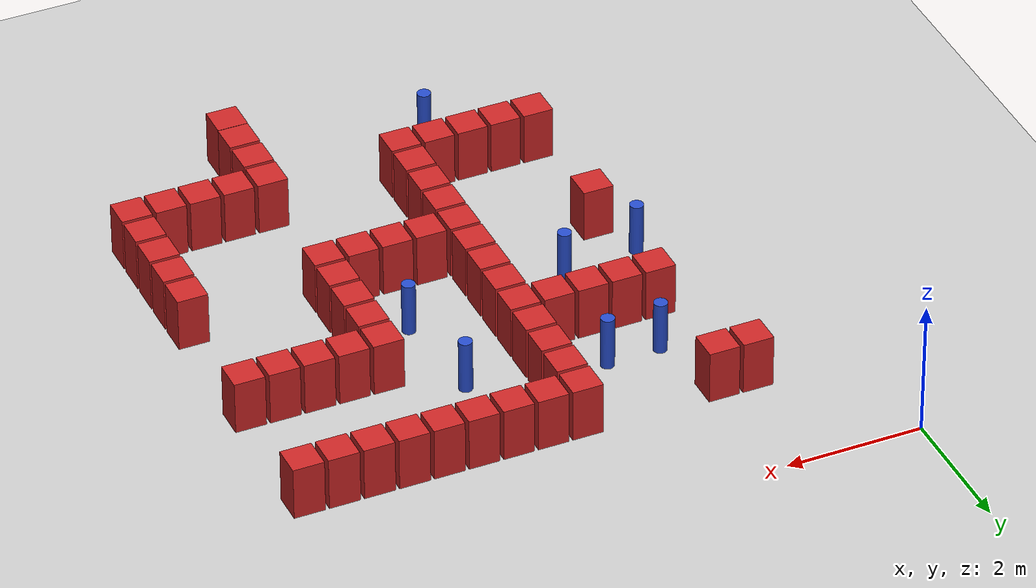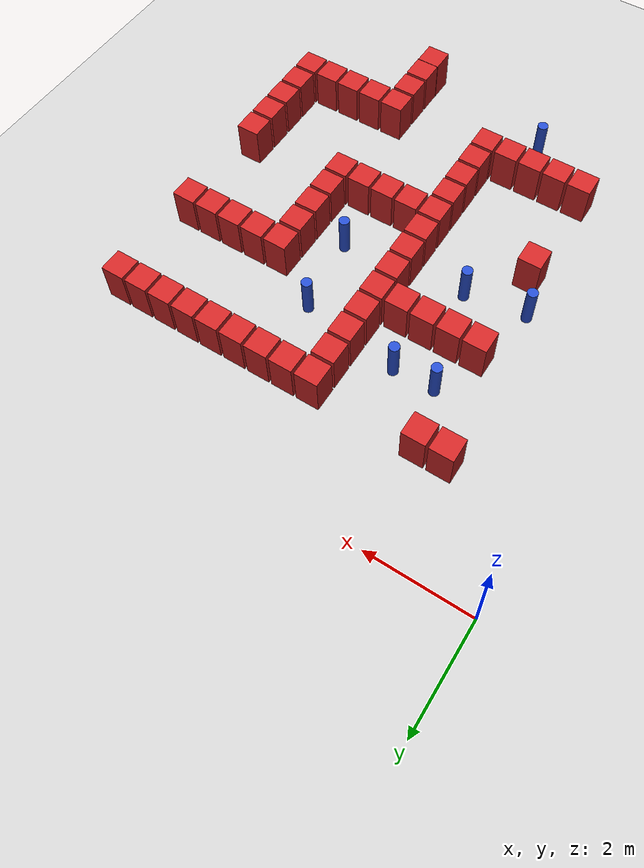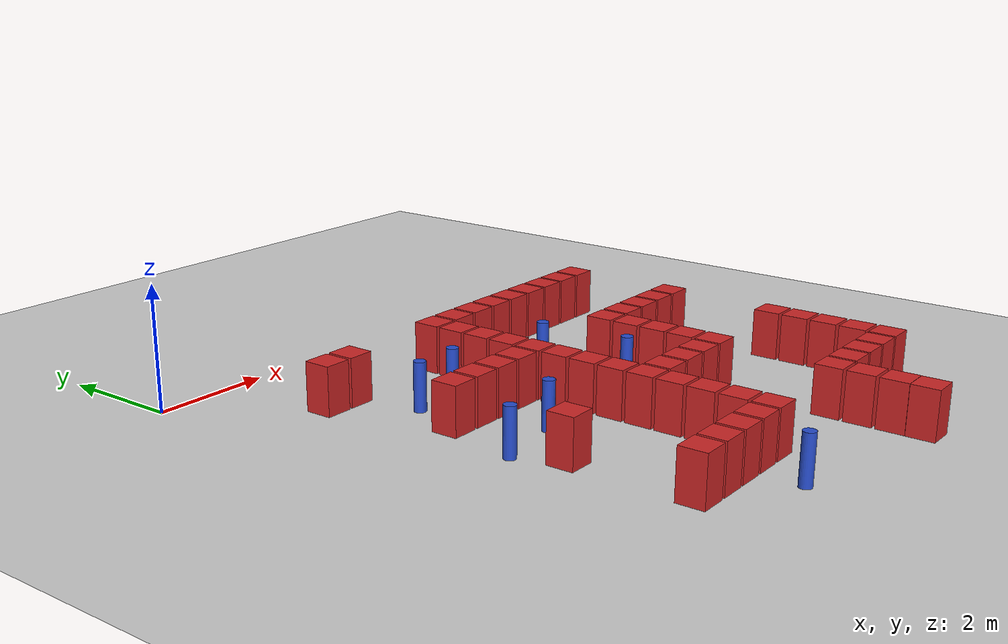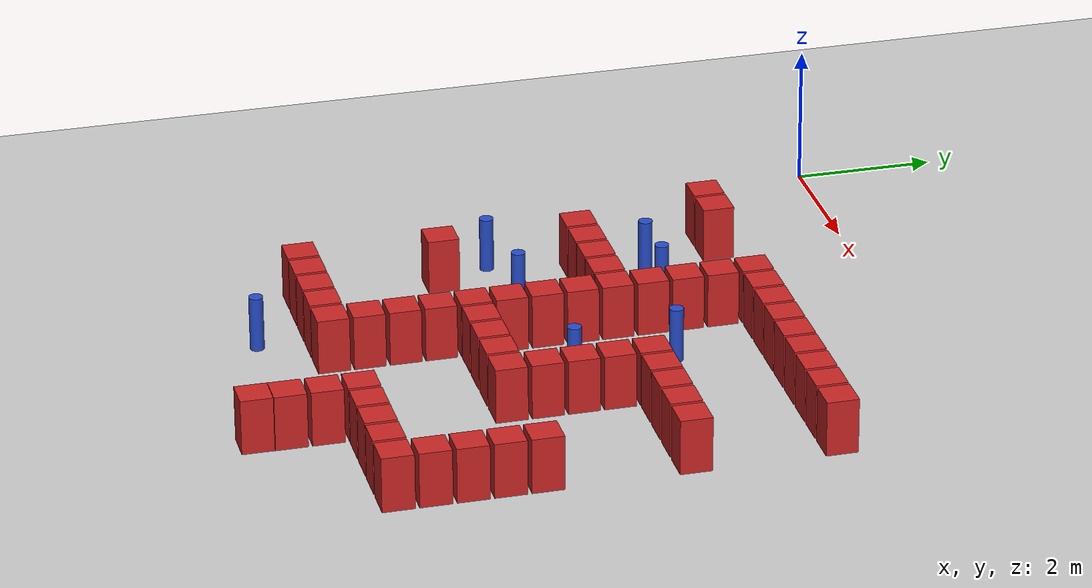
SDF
<sdf version="1.6">
 <world name="default">
  <model name="ground_plane">
   <static>1</static>
   <link name="link">
    <collision name="collision">
     <geometry><plane><normal>0 0 1</normal><size>100 100</size></plane></geometry>
     <surface><friction><ode><mu>100</mu><mu2>50</mu2></ode></friction></surface>
    </collision>
    <visual name="visual">
     <cast_shadows>0</cast_shadows>
     <geometry><plane><normal>0 0 1</normal><size>100 100</size></plane></geometry>
     <material>
      <script><uri>file://media/materials/scripts/gazebo.material</uri><name>Gazebo/Grey</name></script>
     </material>
    </visual>
   </link>
  </model>
  <model name="box_obstacle182">
   <static>0</static>
   <link name="box_obstacle">
    <pose>0 0 0.1 0 -0 0</pose>
    <inertial>
     <mass>100</mass>
     <inertia>
      <ixx>0.166667</ixx>
      <ixy>0</ixy>
      <ixz>0</ixz>
      <iyy>0.166667</iyy>
      <iyz>0</iyz>
      <izz>0.166667</izz>
     </inertia>
    </inertial>
    <collision name="collision"><geometry><box><size>0.45 0.45 0.8</size></box></geometry></collision>
    <visual name="visual">
     <geometry><box><size>0.45 0.45 0.8</size></box></geometry>
     <material>
      <script><name>Gazebo/Red</name><uri>file://media/materials/scripts/gazebo.material</uri></script>
     </material>
    </visual>
   </link>
   <pose>1.61455 -1.92027 0.299997 -3e-06 5e-06 -4e-06</pose>
  </model>
  <model name="box_obstacle186">
   <static>0</static>
   <link name="box_obstacle">
    <pose>0 0 0.1 0 -0 0</pose>
    <inertial>
     <mass>100</mass>
     <inertia>
      <ixx>0.166667</ixx>
      <ixy>0</ixy>
      <ixz>0</ixz>
      <iyy>0.166667</iyy>
      <iyz>0</iyz>
      <izz>0.166667</izz>
     </inertia>
    </inertial>
    <collision name="collision"><geometry><box><size>0.45 0.45 0.8</size></box></geometry></collision>
    <visual name="visual">
     <geometry><box><size>0.45 0.45 0.8</size></box></geometry>
     <material>
      <script><name>Gazebo/Red</name><uri>file://media/materials/scripts/gazebo.material</uri></script>
     </material>
    </visual>
   </link>
   <pose>2.11955 -7.98027 0.299997 -3e-06 5e-06 -4e-06</pose>
  </model>
  <model name="box_obstacle187">
   <static>0</static>
   <link name="box_obstacle">
    <pose>0 0 0.1 0 -0 0</pose>
    <inertial>
     <mass>100</mass>
     <inertia>
      <ixx>0.166667</ixx>
      <ixy>0</ixy>
      <ixz>0</ixz>
      <iyy>0.166667</iyy>
      <iyz>0</iyz>
      <izz>0.166667</izz>
     </inertia>
    </inertial>
    <collision name="collision"><geometry><box><size>0.45 0.45 0.8</size></box></geometry></collision>
    <visual name="visual">
     <geometry><box><size>0.45 0.45 0.8</size></box></geometry>
     <material>
      <script><name>Gazebo/Red</name><uri>file://media/materials/scripts/gazebo.material</uri></script>
     </material>
    </visual>
   </link>
   <pose>2.11955 -5.96027 0.299997 -3e-06 5e-06 -4e-06</pose>
  </model>
  <model name="box_obstacle188">
   <static>0</static>
   <link name="box_obstacle">
    <pose>0 0 0.1 0 -0 0</pose>
    <inertial>
     <mass>100</mass>
     <inertia>
      <ixx>0.166667</ixx>
      <ixy>0</ixy>
      <ixz>0</ixz>
      <iyy>0.166667</iyy>
      <iyz>0</iyz>
      <izz>0.166667</izz>
     </inertia>
    </inertial>
    <collision name="collision"><geometry><box><size>0.45 0.45 0.8</size></box></geometry></collision>
    <visual name="visual">
     <geometry><box><size>0.45 0.45 0.8</size></box></geometry>
     <material>
      <script><name>Gazebo/Red</name><uri>file://media/materials/scripts/gazebo.material</uri></script>
     </material>
    </visual>
   </link>
   <pose>2.11955 -3.94027 0.299997 -3e-06 5e-06 -4e-06</pose>
  </model>
  <model name="box_obstacle189">
   <static>0</static>
   <link name="box_obstacle">
    <pose>0 0 0.1 0 -0 0</pose>
    <inertial>
     <mass>100</mass>
     <inertia>
      <ixx>0.166667</ixx>
      <ixy>0</ixy>
      <ixz>0</ixz>
      <iyy>0.166667</iyy>
      <iyz>0</iyz>
      <izz>0.166667</izz>
     </inertia>
    </inertial>
    <collision name="collision"><geometry><box><size>0.45 0.45 0.8</size></box></geometry></collision>
    <visual name="visual">
     <geometry><box><size>0.45 0.45 0.8</size></box></geometry>
     <material>
      <script><name>Gazebo/Red</name><uri>file://media/materials/scripts/gazebo.material</uri></script>
     </material>
    </visual>
   </link>
   <pose>2.11955 -1.92027 0.299997 -3e-06 5e-06 -4e-06</pose>
  </model>
  <model name="box_obstacle207">
   <static>0</static>
   <link name="box_obstacle">
    <pose>0 0 0.1 0 -0 0</pose>
    <inertial>
     <mass>100</mass>
     <inertia>
      <ixx>0.166667</ixx>
      <ixy>0</ixy>
      <ixz>0</ixz>
      <iyy>0.166667</iyy>
      <iyz>0</iyz>
      <izz>0.166667</izz>
     </inertia>
    </inertial>
    <collision name="collision"><geometry><box><size>0.45 0.45 0.8</size></box></geometry></collision>
    <visual name="visual">
     <geometry><box><size>0.45 0.45 0.8</size></box></geometry>
     <material>
      <script><name>Gazebo/Red</name><uri>file://media/materials/scripts/gazebo.material</uri></script>
     </material>
    </visual>
   </link>
   <pose>2.62455 -7.98027 0.299997 -3e-06 5e-06 -4e-06</pose>
  </model>
  <model name="box_obstacle208">
   <static>0</static>
   <link name="box_obstacle">
    <pose>0 0 0.1 0 -0 0</pose>
    <inertial>
     <mass>100</mass>
     <inertia>
      <ixx>0.166667</ixx>
      <ixy>0</ixy>
      <ixz>0</ixz>
      <iyy>0.166667</iyy>
      <iyz>0</iyz>
      <izz>0.166667</izz>
     </inertia>
    </inertial>
    <collision name="collision"><geometry><box><size>0.45 0.45 0.8</size></box></geometry></collision>
    <visual name="visual">
     <geometry><box><size>0.45 0.45 0.8</size></box></geometry>
     <material>
      <script><name>Gazebo/Red</name><uri>file://media/materials/scripts/gazebo.material</uri></script>
     </material>
    </visual>
   </link>
   <pose>2.62455 -3.94027 0.299997 -3e-06 5e-06 -4e-06</pose>
  </model>
  <model name="box_obstacle210">
   <static>0</static>
   <link name="box_obstacle">
    <pose>0 0 0.1 0 -0 0</pose>
    <inertial>
     <mass>100</mass>
     <inertia>
      <ixx>0.166667</ixx>
      <ixy>0</ixy>
      <ixz>0</ixz>
      <iyy>0.166667</iyy>
      <iyz>0</iyz>
      <izz>0.166667</izz>
     </inertia>
    </inertial>
    <collision name="collision"><geometry><box><size>0.45 0.45 0.8</size></box></geometry></collision>
    <visual name="visual">
     <geometry><box><size>0.45 0.45 0.8</size></box></geometry>
     <material>
      <script><name>Gazebo/Red</name><uri>file://media/materials/scripts/gazebo.material</uri></script>
     </material>
    </visual>
   </link>
   <pose>3.12955 -7.98027 0.299997 -3e-06 5e-06 -4e-06</pose>
  </model>
  <model name="box_obstacle211">
   <static>0</static>
   <link name="box_obstacle">
    <pose>0 0 0.1 0 -0 0</pose>
    <inertial>
     <mass>100</mass>
     <inertia>
      <ixx>0.166667</ixx>
      <ixy>0</ixy>
      <ixz>0</ixz>
      <iyy>0.166667</iyy>
      <iyz>0</iyz>
      <izz>0.166667</izz>
     </inertia>
    </inertial>
    <collision name="collision"><geometry><box><size>0.45 0.45 0.8</size></box></geometry></collision>
    <visual name="visual">
     <geometry><box><size>0.45 0.45 0.8</size></box></geometry>
     <material>
      <script><name>Gazebo/Red</name><uri>file://media/materials/scripts/gazebo.material</uri></script>
     </material>
    </visual>
   </link>
   <pose>3.12955 -3.94027 0.299997 -3e-06 5e-06 -4e-06</pose>
  </model>
  <model name="box_obstacle213">
   <static>0</static>
   <link name="box_obstacle">
    <pose>0 0 0.1 0 -0 0</pose>
    <inertial>
     <mass>100</mass>
     <inertia>
      <ixx>0.166667</ixx>
      <ixy>0</ixy>
      <ixz>0</ixz>
      <iyy>0.166667</iyy>
      <iyz>0</iyz>
      <izz>0.166667</izz>
     </inertia>
    </inertial>
    <collision name="collision"><geometry><box><size>0.45 0.45 0.8</size></box></geometry></collision>
    <visual name="visual">
     <geometry><box><size>0.45 0.45 0.8</size></box></geometry>
     <material>
      <script><name>Gazebo/Red</name><uri>file://media/materials/scripts/gazebo.material</uri></script>
     </material>
    </visual>
   </link>
   <pose>3.63455 -7.98027 0.299997 -3e-06 5e-06 -4e-06</pose>
  </model>
  <model name="box_obstacle214">
   <static>0</static>
   <link name="box_obstacle">
    <pose>0 0 0.1 0 -0 0</pose>
    <inertial>
     <mass>100</mass>
     <inertia>
      <ixx>0.166667</ixx>
      <ixy>0</ixy>
      <ixz>0</ixz>
      <iyy>0.166667</iyy>
      <iyz>0</iyz>
      <izz>0.166667</izz>
     </inertia>
    </inertial>
    <collision name="collision"><geometry><box><size>0.45 0.45 0.8</size></box></geometry></collision>
    <visual name="visual">
     <geometry><box><size>0.45 0.45 0.8</size></box></geometry>
     <material>
      <script><name>Gazebo/Red</name><uri>file://media/materials/scripts/gazebo.material</uri></script>
     </material>
    </visual>
   </link>
   <pose>3.63455 -3.94027 0.299997 -3e-06 5e-06 -4e-06</pose>
  </model>
  <model name="box_obstacle216">
   <static>0</static>
   <link name="box_obstacle">
    <pose>0 0 0.1 0 -0 0</pose>
    <inertial>
     <mass>100</mass>
     <inertia>
      <ixx>0.166667</ixx>
      <ixy>0</ixy>
      <ixz>0</ixz>
      <iyy>0.166667</iyy>
      <iyz>0</iyz>
      <izz>0.166667</izz>
     </inertia>
    </inertial>
    <collision name="collision"><geometry><box><size>0.45 0.45 0.8</size></box></geometry></collision>
    <visual name="visual">
     <geometry><box><size>0.45 0.45 0.8</size></box></geometry>
     <material>
      <script><name>Gazebo/Red</name><uri>file://media/materials/scripts/gazebo.material</uri></script>
     </material>
    </visual>
   </link>
   <pose>4.13955 -7.98027 0.299997 -3e-06 5e-06 -4e-06</pose>
  </model>
  <model name="box_obstacle217">
   <static>0</static>
   <link name="box_obstacle">
    <pose>0 0 0.1 0 -0 0</pose>
    <inertial>
     <mass>100</mass>
     <inertia>
      <ixx>0.166667</ixx>
      <ixy>0</ixy>
      <ixz>0</ixz>
      <iyy>0.166667</iyy>
      <iyz>0</iyz>
      <izz>0.166667</izz>
     </inertia>
    </inertial>
    <collision name="collision"><geometry><box><size>0.45 0.45 0.8</size></box></geometry></collision>
    <visual name="visual">
     <geometry><box><size>0.45 0.45 0.8</size></box></geometry>
     <material>
      <script><name>Gazebo/Red</name><uri>file://media/materials/scripts/gazebo.material</uri></script>
     </material>
    </visual>
   </link>
   <pose>4.13955 -7.47527 0.299997 -3e-06 5e-06 -4e-06</pose>
  </model>
  <model name="box_obstacle218">
   <static>0</static>
   <link name="box_obstacle">
    <pose>0 0 0.1 0 -0 0</pose>
    <inertial>
     <mass>100</mass>
     <inertia>
      <ixx>0.166667</ixx>
      <ixy>0</ixy>
      <ixz>0</ixz>
      <iyy>0.166667</iyy>
      <iyz>0</iyz>
      <izz>0.166667</izz>
     </inertia>
    </inertial>
    <collision name="collision"><geometry><box><size>0.45 0.45 0.8</size></box></geometry></collision>
    <visual name="visual">
     <geometry><box><size>0.45 0.45 0.8</size></box></geometry>
     <material>
      <script><name>Gazebo/Red</name><uri>file://media/materials/scripts/gazebo.material</uri></script>
     </material>
    </visual>
   </link>
   <pose>4.13955 -6.97027 0.299997 -3e-06 5e-06 -4e-06</pose>
  </model>
  <model name="box_obstacle219">
   <static>0</static>
   <link name="box_obstacle">
    <pose>0 0 0.1 0 -0 0</pose>
    <inertial>
     <mass>100</mass>
     <inertia>
      <ixx>0.166667</ixx>
      <ixy>0</ixy>
      <ixz>0</ixz>
      <iyy>0.166667</iyy>
      <iyz>0</iyz>
      <izz>0.166667</izz>
     </inertia>
    </inertial>
    <collision name="collision"><geometry><box><size>0.45 0.45 0.8</size></box></geometry></collision>
    <visual name="visual">
     <geometry><box><size>0.45 0.45 0.8</size></box></geometry>
     <material>
      <script><name>Gazebo/Red</name><uri>file://media/materials/scripts/gazebo.material</uri></script>
     </material>
    </visual>
   </link>
   <pose>4.13955 -6.46527 0.299997 -3e-06 5e-06 -4e-06</pose>
  </model>
  <model name="box_obstacle220">
   <static>0</static>
   <link name="box_obstacle">
    <pose>0 0 0.1 0 -0 0</pose>
    <inertial>
     <mass>100</mass>
     <inertia>
      <ixx>0.166667</ixx>
      <ixy>0</ixy>
      <ixz>0</ixz>
      <iyy>0.166667</iyy>
      <iyz>0</iyz>
      <izz>0.166667</izz>
     </inertia>
    </inertial>
    <collision name="collision"><geometry><box><size>0.45 0.45 0.8</size></box></geometry></collision>
    <visual name="visual">
     <geometry><box><size>0.45 0.45 0.8</size></box></geometry>
     <material>
      <script><name>Gazebo/Red</name><uri>file://media/materials/scripts/gazebo.material</uri></script>
     </material>
    </visual>
   </link>
   <pose>4.13955 -5.96027 0.299997 -3e-06 5e-06 -4e-06</pose>
  </model>
  <model name="box_obstacle221">
   <static>0</static>
   <link name="box_obstacle">
    <pose>0 0 0.1 0 -0 0</pose>
    <inertial>
     <mass>100</mass>
     <inertia>
      <ixx>0.166667</ixx>
      <ixy>0</ixy>
      <ixz>0</ixz>
      <iyy>0.166667</iyy>
      <iyz>0</iyz>
      <izz>0.166667</izz>
     </inertia>
    </inertial>
    <collision name="collision"><geometry><box><size>0.45 0.45 0.8</size></box></geometry></collision>
    <visual name="visual">
     <geometry><box><size>0.45 0.45 0.8</size></box></geometry>
     <material>
      <script><name>Gazebo/Red</name><uri>file://media/materials/scripts/gazebo.material</uri></script>
     </material>
    </visual>
   </link>
   <pose>4.13955 -5.45527 0.299997 -3e-06 5e-06 -4e-06</pose>
  </model>
  <model name="box_obstacle222">
   <static>0</static>
   <link name="box_obstacle">
    <pose>0 0 0.1 0 -0 0</pose>
    <inertial>
     <mass>100</mass>
     <inertia>
      <ixx>0.166667</ixx>
      <ixy>0</ixy>
      <ixz>0</ixz>
      <iyy>0.166667</iyy>
      <iyz>0</iyz>
      <izz>0.166667</izz>
     </inertia>
    </inertial>
    <collision name="collision"><geometry><box><size>0.45 0.45 0.8</size></box></geometry></collision>
    <visual name="visual">
     <geometry><box><size>0.45 0.45 0.8</size></box></geometry>
     <material>
      <script><name>Gazebo/Red</name><uri>file://media/materials/scripts/gazebo.material</uri></script>
     </material>
    </visual>
   </link>
   <pose>4.13955 -4.95027 0.299997 -3e-06 5e-06 -4e-06</pose>
  </model>
  <model name="box_obstacle223">
   <static>0</static>
   <link name="box_obstacle">
    <pose>0 0 0.1 0 -0 0</pose>
    <inertial>
     <mass>100</mass>
     <inertia>
      <ixx>0.166667</ixx>
      <ixy>0</ixy>
      <ixz>0</ixz>
      <iyy>0.166667</iyy>
      <iyz>0</iyz>
      <izz>0.166667</izz>
     </inertia>
    </inertial>
    <collision name="collision"><geometry><box><size>0.45 0.45 0.8</size></box></geometry></collision>
    <visual name="visual">
     <geometry><box><size>0.45 0.45 0.8</size></box></geometry>
     <material>
      <script><name>Gazebo/Red</name><uri>file://media/materials/scripts/gazebo.material</uri></script>
     </material>
    </visual>
   </link>
   <pose>4.13955 -4.44527 0.299997 -3e-06 5e-06 -4e-06</pose>
  </model>
  <model name="box_obstacle224">
   <static>0</static>
   <link name="box_obstacle">
    <pose>0 0 0.1 0 -0 0</pose>
    <inertial>
     <mass>100</mass>
     <inertia>
      <ixx>0.166667</ixx>
      <ixy>0</ixy>
      <ixz>0</ixz>
      <iyy>0.166667</iyy>
      <iyz>0</iyz>
      <izz>0.166667</izz>
     </inertia>
    </inertial>
    <collision name="collision"><geometry><box><size>0.45 0.45 0.8</size></box></geometry></collision>
    <visual name="visual">
     <geometry><box><size>0.45 0.45 0.8</size></box></geometry>
     <material>
      <script><name>Gazebo/Red</name><uri>file://media/materials/scripts/gazebo.material</uri></script>
     </material>
    </visual>
   </link>
   <pose>4.13955 -3.94027 0.299997 -3e-06 5e-06 -4e-06</pose>
  </model>
  <model name="box_obstacle225">
   <static>0</static>
   <link name="box_obstacle">
    <pose>0 0 0.1 0 -0 0</pose>
    <inertial>
     <mass>100</mass>
     <inertia>
      <ixx>0.166667</ixx>
      <ixy>0</ixy>
      <ixz>0</ixz>
      <iyy>0.166667</iyy>
      <iyz>0</iyz>
      <izz>0.166667</izz>
     </inertia>
    </inertial>
    <collision name="collision"><geometry><box><size>0.45 0.45 0.8</size></box></geometry></collision>
    <visual name="visual">
     <geometry><box><size>0.45 0.45 0.8</size></box></geometry>
     <material>
      <script><name>Gazebo/Red</name><uri>file://media/materials/scripts/gazebo.material</uri></script>
     </material>
    </visual>
   </link>
   <pose>4.13955 -3.43527 0.299997 -3e-06 5e-06 -4e-06</pose>
  </model>
  <model name="box_obstacle226">
   <static>0</static>
   <link name="box_obstacle">
    <pose>0 0 0.1 0 -0 0</pose>
    <inertial>
     <mass>100</mass>
     <inertia>
      <ixx>0.166667</ixx>
      <ixy>0</ixy>
      <ixz>0</ixz>
      <iyy>0.166667</iyy>
      <iyz>0</iyz>
      <izz>0.166667</izz>
     </inertia>
    </inertial>
    <collision name="collision"><geometry><box><size>0.45 0.45 0.8</size></box></geometry></collision>
    <visual name="visual">
     <geometry><box><size>0.45 0.45 0.8</size></box></geometry>
     <material>
      <script><name>Gazebo/Red</name><uri>file://media/materials/scripts/gazebo.material</uri></script>
     </material>
    </visual>
   </link>
   <pose>4.13955 -2.93027 0.299997 -3e-06 5e-06 -4e-06</pose>
  </model>
  <model name="box_obstacle227">
   <static>0</static>
   <link name="box_obstacle">
    <pose>0 0 0.1 0 -0 0</pose>
    <inertial>
     <mass>100</mass>
     <inertia>
      <ixx>0.166667</ixx>
      <ixy>0</ixy>
      <ixz>0</ixz>
      <iyy>0.166667</iyy>
      <iyz>0</iyz>
      <izz>0.166667</izz>
     </inertia>
    </inertial>
    <collision name="collision"><geometry><box><size>0.45 0.45 0.8</size></box></geometry></collision>
    <visual name="visual">
     <geometry><box><size>0.45 0.45 0.8</size></box></geometry>
     <material>
      <script><name>Gazebo/Red</name><uri>file://media/materials/scripts/gazebo.material</uri></script>
     </material>
    </visual>
   </link>
   <pose>4.13955 -2.42527 0.299997 -3e-06 5e-06 -4e-06</pose>
  </model>
  <model name="box_obstacle228">
   <static>0</static>
   <link name="box_obstacle">
    <pose>0 0 0.1 0 -0 0</pose>
    <inertial>
     <mass>100</mass>
     <inertia>
      <ixx>0.166667</ixx>
      <ixy>0</ixy>
      <ixz>0</ixz>
      <iyy>0.166667</iyy>
      <iyz>0</iyz>
      <izz>0.166667</izz>
     </inertia>
    </inertial>
    <collision name="collision"><geometry><box><size>0.45 0.45 0.8</size></box></geometry></collision>
    <visual name="visual">
     <geometry><box><size>0.45 0.45 0.8</size></box></geometry>
     <material>
      <script><name>Gazebo/Red</name><uri>file://media/materials/scripts/gazebo.material</uri></script>
     </material>
    </visual>
   </link>
   <pose>4.13955 -1.92027 0.299997 -3e-06 5e-06 -4e-06</pose>
  </model>
  <model name="box_obstacle246">
   <static>0</static>
   <link name="box_obstacle">
    <pose>0 0 0.1 0 -0 0</pose>
    <inertial>
     <mass>100</mass>
     <inertia>
      <ixx>0.166667</ixx>
      <ixy>0</ixy>
      <ixz>0</ixz>
      <iyy>0.166667</iyy>
      <iyz>0</iyz>
      <izz>0.166667</izz>
     </inertia>
    </inertial>
    <collision name="collision"><geometry><box><size>0.45 0.45 0.8</size></box></geometry></collision>
    <visual name="visual">
     <geometry><box><size>0.45 0.45 0.8</size></box></geometry>
     <material>
      <script><name>Gazebo/Red</name><uri>file://media/materials/scripts/gazebo.material</uri></script>
     </material>
    </visual>
   </link>
   <pose>4.64455 -5.96027 0.299997 -3e-06 5e-06 -4e-06</pose>
  </model>
  <model name="box_obstacle247">
   <static>0</static>
   <link name="box_obstacle">
    <pose>0 0 0.1 0 -0 0</pose>
    <inertial>
     <mass>100</mass>
     <inertia>
      <ixx>0.166667</ixx>
      <ixy>0</ixy>
      <ixz>0</ixz>
      <iyy>0.166667</iyy>
      <iyz>0</iyz>
      <izz>0.166667</izz>
     </inertia>
    </inertial>
    <collision name="collision"><geometry><box><size>0.45 0.45 0.8</size></box></geometry></collision>
    <visual name="visual">
     <geometry><box><size>0.45 0.45 0.8</size></box></geometry>
     <material>
      <script><name>Gazebo/Red</name><uri>file://media/materials/scripts/gazebo.material</uri></script>
     </material>
    </visual>
   </link>
   <pose>4.64455 -1.92027 0.299997 -3e-06 5e-06 -4e-06</pose>
  </model>
  <model name="box_obstacle250">
   <static>0</static>
   <link name="box_obstacle">
    <pose>0 0 0.1 0 -0 0</pose>
    <inertial>
     <mass>100</mass>
     <inertia>
      <ixx>0.166667</ixx>
      <ixy>0</ixy>
      <ixz>0</ixz>
      <iyy>0.166667</iyy>
      <iyz>0</iyz>
      <izz>0.166667</izz>
     </inertia>
    </inertial>
    <collision name="collision"><geometry><box><size>0.45 0.45 0.8</size></box></geometry></collision>
    <visual name="visual">
     <geometry><box><size>0.45 0.45 0.8</size></box></geometry>
     <material>
      <script><name>Gazebo/Red</name><uri>file://media/materials/scripts/gazebo.material</uri></script>
     </material>
    </visual>
   </link>
   <pose>5.14955 -5.96027 0.299997 -3e-06 5e-06 -4e-06</pose>
  </model>
  <model name="box_obstacle251">
   <static>0</static>
   <link name="box_obstacle">
    <pose>0 0 0.1 0 -0 0</pose>
    <inertial>
     <mass>100</mass>
     <inertia>
      <ixx>0.166667</ixx>
      <ixy>0</ixy>
      <ixz>0</ixz>
      <iyy>0.166667</iyy>
      <iyz>0</iyz>
      <izz>0.166667</izz>
     </inertia>
    </inertial>
    <collision name="collision"><geometry><box><size>0.45 0.45 0.8</size></box></geometry></collision>
    <visual name="visual">
     <geometry><box><size>0.45 0.45 0.8</size></box></geometry>
     <material>
      <script><name>Gazebo/Red</name><uri>file://media/materials/scripts/gazebo.material</uri></script>
     </material>
    </visual>
   </link>
   <pose>5.14955 -1.92027 0.299997 -3e-06 5e-06 -4e-06</pose>
  </model>
  <model name="box_obstacle254">
   <static>0</static>
   <link name="box_obstacle">
    <pose>0 0 0.1 0 -0 0</pose>
    <inertial>
     <mass>100</mass>
     <inertia>
      <ixx>0.166667</ixx>
      <ixy>0</ixy>
      <ixz>0</ixz>
      <iyy>0.166667</iyy>
      <iyz>0</iyz>
      <izz>0.166667</izz>
     </inertia>
    </inertial>
    <collision name="collision"><geometry><box><size>0.45 0.45 0.8</size></box></geometry></collision>
    <visual name="visual">
     <geometry><box><size>0.45 0.45 0.8</size></box></geometry>
     <material>
      <script><name>Gazebo/Red</name><uri>file://media/materials/scripts/gazebo.material</uri></script>
     </material>
    </visual>
   </link>
   <pose>5.65455 -5.96027 0.299997 -3e-06 5e-06 -4e-06</pose>
  </model>
  <model name="box_obstacle255">
   <static>0</static>
   <link name="box_obstacle">
    <pose>0 0 0.1 0 -0 0</pose>
    <inertial>
     <mass>100</mass>
     <inertia>
      <ixx>0.166667</ixx>
      <ixy>0</ixy>
      <ixz>0</ixz>
      <iyy>0.166667</iyy>
      <iyz>0</iyz>
      <izz>0.166667</izz>
     </inertia>
    </inertial>
    <collision name="collision"><geometry><box><size>0.45 0.45 0.8</size></box></geometry></collision>
    <visual name="visual">
     <geometry><box><size>0.45 0.45 0.8</size></box></geometry>
     <material>
      <script><name>Gazebo/Red</name><uri>file://media/materials/scripts/gazebo.material</uri></script>
     </material>
    </visual>
   </link>
   <pose>5.65455 -1.92027 0.299997 -3e-06 5e-06 -4e-06</pose>
  </model>
  <model name="box_obstacle258">
   <static>0</static>
   <link name="box_obstacle">
    <pose>0 0 0.1 0 -0 0</pose>
    <inertial>
     <mass>100</mass>
     <inertia>
      <ixx>0.166667</ixx>
      <ixy>0</ixy>
      <ixz>0</ixz>
      <iyy>0.166667</iyy>
      <iyz>0</iyz>
      <izz>0.166667</izz>
     </inertia>
    </inertial>
    <collision name="collision"><geometry><box><size>0.45 0.45 0.8</size></box></geometry></collision>
    <visual name="visual">
     <geometry><box><size>0.45 0.45 0.8</size></box></geometry>
     <material>
      <script><name>Gazebo/Red</name><uri>file://media/materials/scripts/gazebo.material</uri></script>
     </material>
    </visual>
   </link>
   <pose>6.1541 -9.44676 0.299999 -5e-06 9e-06 -0.002993</pose>
  </model>
  <model name="box_obstacle259">
   <static>0</static>
   <link name="box_obstacle">
    <pose>0 0 0.1 0 -0 0</pose>
    <inertial>
     <mass>100</mass>
     <inertia>
      <ixx>0.166667</ixx>
      <ixy>0</ixy>
      <ixz>0</ixz>
      <iyy>0.166667</iyy>
      <iyz>0</iyz>
      <izz>0.166667</izz>
     </inertia>
    </inertial>
    <collision name="collision"><geometry><box><size>0.45 0.45 0.8</size></box></geometry></collision>
    <visual name="visual">
     <geometry><box><size>0.45 0.45 0.8</size></box></geometry>
     <material>
      <script><name>Gazebo/Red</name><uri>file://media/materials/scripts/gazebo.material</uri></script>
     </material>
    </visual>
   </link>
   <pose>6.15955 -8.99028 0.299997 1e-05 -7e-06 0.001276</pose>
  </model>
  <model name="box_obstacle260">
   <static>0</static>
   <link name="box_obstacle">
    <pose>0 0 0.1 0 -0 0</pose>
    <inertial>
     <mass>100</mass>
     <inertia>
      <ixx>0.166667</ixx>
      <ixy>0</ixy>
      <ixz>0</ixz>
      <iyy>0.166667</iyy>
      <iyz>0</iyz>
      <izz>0.166667</izz>
     </inertia>
    </inertial>
    <collision name="collision"><geometry><box><size>0.45 0.45 0.8</size></box></geometry></collision>
    <visual name="visual">
     <geometry><box><size>0.45 0.45 0.8</size></box></geometry>
     <material>
      <script><name>Gazebo/Red</name><uri>file://media/materials/scripts/gazebo.material</uri></script>
     </material>
    </visual>
   </link>
   <pose>6.15955 -8.48527 0.299997 -3e-06 5e-06 -4e-06</pose>
  </model>
  <model name="box_obstacle261">
   <static>0</static>
   <link name="box_obstacle">
    <pose>0 0 0.1 0 -0 0</pose>
    <inertial>
     <mass>100</mass>
     <inertia>
      <ixx>0.166667</ixx>
      <ixy>0</ixy>
      <ixz>0</ixz>
      <iyy>0.166667</iyy>
      <iyz>0</iyz>
      <izz>0.166667</izz>
     </inertia>
    </inertial>
    <collision name="collision"><geometry><box><size>0.45 0.45 0.8</size></box></geometry></collision>
    <visual name="visual">
     <geometry><box><size>0.45 0.45 0.8</size></box></geometry>
     <material>
      <script><name>Gazebo/Red</name><uri>file://media/materials/scripts/gazebo.material</uri></script>
     </material>
    </visual>
   </link>
   <pose>6.15955 -7.98027 0.299997 -3e-06 5e-06 -4e-06</pose>
  </model>
  <model name="box_obstacle262">
   <static>0</static>
   <link name="box_obstacle">
    <pose>0 0 0.1 0 -0 0</pose>
    <inertial>
     <mass>100</mass>
     <inertia>
      <ixx>0.166667</ixx>
      <ixy>0</ixy>
      <ixz>0</ixz>
      <iyy>0.166667</iyy>
      <iyz>0</iyz>
      <izz>0.166667</izz>
     </inertia>
    </inertial>
    <collision name="collision"><geometry><box><size>0.45 0.45 0.8</size></box></geometry></collision>
    <visual name="visual">
     <geometry><box><size>0.45 0.45 0.8</size></box></geometry>
     <material>
      <script><name>Gazebo/Red</name><uri>file://media/materials/scripts/gazebo.material</uri></script>
     </material>
    </visual>
   </link>
   <pose>6.15955 -5.96027 0.299997 -3e-06 5e-06 -4e-06</pose>
  </model>
  <model name="box_obstacle263">
   <static>0</static>
   <link name="box_obstacle">
    <pose>0 0 0.1 0 -0 0</pose>
    <inertial>
     <mass>100</mass>
     <inertia>
      <ixx>0.166667</ixx>
      <ixy>0</ixy>
      <ixz>0</ixz>
      <iyy>0.166667</iyy>
      <iyz>0</iyz>
      <izz>0.166667</izz>
     </inertia>
    </inertial>
    <collision name="collision"><geometry><box><size>0.45 0.45 0.8</size></box></geometry></collision>
    <visual name="visual">
     <geometry><box><size>0.45 0.45 0.8</size></box></geometry>
     <material>
      <script><name>Gazebo/Red</name><uri>file://media/materials/scripts/gazebo.material</uri></script>
     </material>
    </visual>
   </link>
   <pose>6.15955 -5.45527 0.299997 -3e-06 5e-06 -4e-06</pose>
  </model>
  <model name="box_obstacle264">
   <static>0</static>
   <link name="box_obstacle">
    <pose>0 0 0.1 0 -0 0</pose>
    <inertial>
     <mass>100</mass>
     <inertia>
      <ixx>0.166667</ixx>
      <ixy>0</ixy>
      <ixz>0</ixz>
      <iyy>0.166667</iyy>
      <iyz>0</iyz>
      <izz>0.166667</izz>
     </inertia>
    </inertial>
    <collision name="collision"><geometry><box><size>0.45 0.45 0.8</size></box></geometry></collision>
    <visual name="visual">
     <geometry><box><size>0.45 0.45 0.8</size></box></geometry>
     <material>
      <script><name>Gazebo/Red</name><uri>file://media/materials/scripts/gazebo.material</uri></script>
     </material>
    </visual>
   </link>
   <pose>6.15955 -4.95027 0.299997 -3e-06 5e-06 -4e-06</pose>
  </model>
  <model name="box_obstacle265">
   <static>0</static>
   <link name="box_obstacle">
    <pose>0 0 0.1 0 -0 0</pose>
    <inertial>
     <mass>100</mass>
     <inertia>
      <ixx>0.166667</ixx>
      <ixy>0</ixy>
      <ixz>0</ixz>
      <iyy>0.166667</iyy>
      <iyz>0</iyz>
      <izz>0.166667</izz>
     </inertia>
    </inertial>
    <collision name="collision"><geometry><box><size>0.45 0.45 0.8</size></box></geometry></collision>
    <visual name="visual">
     <geometry><box><size>0.45 0.45 0.8</size></box></geometry>
     <material>
      <script><name>Gazebo/Red</name><uri>file://media/materials/scripts/gazebo.material</uri></script>
     </material>
    </visual>
   </link>
   <pose>6.15955 -4.44527 0.299997 -3e-06 5e-06 -4e-06</pose>
  </model>
  <model name="box_obstacle266">
   <static>0</static>
   <link name="box_obstacle">
    <pose>0 0 0.1 0 -0 0</pose>
    <inertial>
     <mass>100</mass>
     <inertia>
      <ixx>0.166667</ixx>
      <ixy>0</ixy>
      <ixz>0</ixz>
      <iyy>0.166667</iyy>
      <iyz>0</iyz>
      <izz>0.166667</izz>
     </inertia>
    </inertial>
    <collision name="collision"><geometry><box><size>0.45 0.45 0.8</size></box></geometry></collision>
    <visual name="visual">
     <geometry><box><size>0.45 0.45 0.8</size></box></geometry>
     <material>
      <script><name>Gazebo/Red</name><uri>file://media/materials/scripts/gazebo.material</uri></script>
     </material>
    </visual>
   </link>
   <pose>6.15955 -3.94027 0.299997 -3e-06 5e-06 -4e-06</pose>
  </model>
  <model name="box_obstacle267">
   <static>0</static>
   <link name="box_obstacle">
    <pose>0 0 0.1 0 -0 0</pose>
    <inertial>
     <mass>100</mass>
     <inertia>
      <ixx>0.166667</ixx>
      <ixy>0</ixy>
      <ixz>0</ixz>
      <iyy>0.166667</iyy>
      <iyz>0</iyz>
      <izz>0.166667</izz>
     </inertia>
    </inertial>
    <collision name="collision"><geometry><box><size>0.45 0.45 0.8</size></box></geometry></collision>
    <visual name="visual">
     <geometry><box><size>0.45 0.45 0.8</size></box></geometry>
     <material>
      <script><name>Gazebo/Red</name><uri>file://media/materials/scripts/gazebo.material</uri></script>
     </material>
    </visual>
   </link>
   <pose>6.15955 -1.92027 0.299997 -3e-06 5e-06 -4e-06</pose>
  </model>
  <model name="box_obstacle282">
   <static>0</static>
   <link name="box_obstacle">
    <pose>0 0 0.1 0 -0 0</pose>
    <inertial>
     <mass>100</mass>
     <inertia>
      <ixx>0.166667</ixx>
      <ixy>0</ixy>
      <ixz>0</ixz>
      <iyy>0.166667</iyy>
      <iyz>0</iyz>
      <izz>0.166667</izz>
     </inertia>
    </inertial>
    <collision name="collision"><geometry><box><size>0.45 0.45 0.8</size></box></geometry></collision>
    <visual name="visual">
     <geometry><box><size>0.45 0.45 0.8</size></box></geometry>
     <material>
      <script><name>Gazebo/Red</name><uri>file://media/materials/scripts/gazebo.material</uri></script>
     </material>
    </visual>
   </link>
   <pose>6.66455 -7.98027 0.299997 -3e-06 5e-06 -4e-06</pose>
  </model>
  <model name="box_obstacle283">
   <static>0</static>
   <link name="box_obstacle">
    <pose>0 0 0.1 0 -0 0</pose>
    <inertial>
     <mass>100</mass>
     <inertia>
      <ixx>0.166667</ixx>
      <ixy>0</ixy>
      <ixz>0</ixz>
      <iyy>0.166667</iyy>
      <iyz>0</iyz>
      <izz>0.166667</izz>
     </inertia>
    </inertial>
    <collision name="collision"><geometry><box><size>0.45 0.45 0.8</size></box></geometry></collision>
    <visual name="visual">
     <geometry><box><size>0.45 0.45 0.8</size></box></geometry>
     <material>
      <script><name>Gazebo/Red</name><uri>file://media/materials/scripts/gazebo.material</uri></script>
     </material>
    </visual>
   </link>
   <pose>6.66455 -3.94027 0.299997 -3e-06 5e-06 -4e-06</pose>
  </model>
  <model name="box_obstacle284">
   <static>0</static>
   <link name="box_obstacle">
    <pose>0 0 0.1 0 -0 0</pose>
    <inertial>
     <mass>100</mass>
     <inertia>
      <ixx>0.166667</ixx>
      <ixy>0</ixy>
      <ixz>0</ixz>
      <iyy>0.166667</iyy>
      <iyz>0</iyz>
      <izz>0.166667</izz>
     </inertia>
    </inertial>
    <collision name="collision"><geometry><box><size>0.45 0.45 0.8</size></box></geometry></collision>
    <visual name="visual">
     <geometry><box><size>0.45 0.45 0.8</size></box></geometry>
     <material>
      <script><name>Gazebo/Red</name><uri>file://media/materials/scripts/gazebo.material</uri></script>
     </material>
    </visual>
   </link>
   <pose>6.66455 -1.92027 0.299997 -3e-06 5e-06 -4e-06</pose>
  </model>
  <model name="cylinder_obstacle1">
   <static>0</static>
   <link name="link">
    <pose>0 0 1 0 -0 0</pose>
    <inertial>
     <mass>100</mass>
     <inertia>
      <ixx>0.166667</ixx>
      <ixy>0</ixy>
      <ixz>0</ixz>
      <iyy>0.166667</iyy>
      <iyz>0</iyz>
      <izz>0.166667</izz>
     </inertia>
    </inertial>
    <collision name="collision">
     <geometry><cylinder><radius>0.1</radius><length>0.8</length></cylinder></geometry>
    </collision>
    <visual name="visual">
     <geometry><cylinder><radius>0.1</radius><length>0.8</length></cylinder></geometry>
     <material>
      <script><name>Gazebo/Blue</name><uri>file://media/materials/scripts/gazebo.material</uri></script>
     </material>
    </visual>
   </link>
   <pose>5.20324 -3.3354 -0.600002 3e-06 1e-06 0.003885</pose>
  </model>
  <model name="cylinder_obstacle10">
   <static>0</static>
   <link name="link">
    <pose>0 0 1 0 -0 0</pose>
    <inertial>
     <mass>100</mass>
     <inertia>
      <ixx>0.166667</ixx>
      <ixy>0</ixy>
      <ixz>0</ixz>
      <iyy>0.166667</iyy>
      <iyz>0</iyz>
      <izz>0.166667</izz>
     </inertia>
    </inertial>
    <collision name="collision">
     <geometry><cylinder><radius>0.1</radius><length>0.8</length></cylinder></geometry>
    </collision>
    <visual name="visual">
     <geometry><cylinder><radius>0.1</radius><length>0.8</length></cylinder></geometry>
     <material>
      <script><name>Gazebo/Blue</name><uri>file://media/materials/scripts/gazebo.material</uri></script>
     </material>
    </visual>
   </link>
   <pose>2.96401 -5.0293 -0.600002 3e-06 1e-06 0.003885</pose>
  </model>
  <model name="cylinder_obstacle15">
   <static>0</static>
   <link name="link">
    <pose>0 0 1 0 -0 0</pose>
    <inertial>
     <mass>100</mass>
     <inertia>
      <ixx>0.166667</ixx>
      <ixy>0</ixy>
      <ixz>0</ixz>
      <iyy>0.166667</iyy>
      <iyz>0</iyz>
      <izz>0.166667</izz>
     </inertia>
    </inertial>
    <collision name="collision">
     <geometry><cylinder><radius>0.1</radius><length>0.8</length></cylinder></geometry>
    </collision>
    <visual name="visual">
     <geometry><cylinder><radius>0.1</radius><length>0.8</length></cylinder></geometry>
     <material>
      <script><name>Gazebo/Blue</name><uri>file://media/materials/scripts/gazebo.material</uri></script>
     </material>
    </visual>
   </link>
   <pose>3.38811 -8.86911 -0.600002 3e-06 1e-06 0.003885</pose>
  </model>
  <model name="cylinder_obstacle54">
   <static>0</static>
   <link name="link">
    <pose>0 0 1 0 -0 0</pose>
    <inertial>
     <mass>100</mass>
     <inertia>
      <ixx>0.166667</ixx>
      <ixy>0</ixy>
      <ixz>0</ixz>
      <iyy>0.166667</iyy>
      <iyz>0</iyz>
      <izz>0.166667</izz>
     </inertia>
    </inertial>
    <collision name="collision">
     <geometry><cylinder><radius>0.1</radius><length>0.8</length></cylinder></geometry>
    </collision>
    <visual name="visual">
     <geometry><cylinder><radius>0.1</radius><length>0.8</length></cylinder></geometry>
     <material>
      <script><name>Gazebo/Blue</name><uri>file://media/materials/scripts/gazebo.material</uri></script>
     </material>
    </visual>
   </link>
   <pose>2.4439 -3.03524 -0.600002 3e-06 1e-06 0.003885</pose>
  </model>
  <model name="cylinder_obstacle56">
   <static>0</static>
   <link name="link">
    <pose>0 0 1 0 -0 0</pose>
    <inertial>
     <mass>100</mass>
     <inertia>
      <ixx>0.166667</ixx>
      <ixy>0</ixy>
      <ixz>0</ixz>
      <iyy>0.166667</iyy>
      <iyz>0</iyz>
      <izz>0.166667</izz>
     </inertia>
    </inertial>
    <collision name="collision">
     <geometry><cylinder><radius>0.1</radius><length>0.8</length></cylinder></geometry>
    </collision>
    <visual name="visual">
     <geometry><cylinder><radius>0.1</radius><length>0.8</length></cylinder></geometry>
     <material>
      <script><name>Gazebo/Blue</name><uri>file://media/materials/scripts/gazebo.material</uri></script>
     </material>
    </visual>
   </link>
   <pose>1.78649 -5.20909 -0.600002 3e-06 1e-06 0.003885</pose>
  </model>
  <model name="box_obstacle287">
   <static>0</static>
   <link name="box_obstacle">
    <pose>0 0 0.1 0 -0 0</pose>
    <inertial>
     <mass>100</mass>
     <inertia>
      <ixx>0.166667</ixx>
      <ixy>0</ixy>
      <ixz>0</ixz>
      <iyy>0.166667</iyy>
      <iyz>0</iyz>
      <izz>0.166667</izz>
     </inertia>
    </inertial>
    <collision name="collision"><geometry><box><size>0.45 0.45 0.8</size></box></geometry></collision>
    <visual name="visual">
     <geometry><box><size>0.45 0.45 0.8</size></box></geometry>
     <material>
      <script><name>Gazebo/Red</name><uri>file://media/materials/scripts/gazebo.material</uri></script>
     </material>
    </visual>
   </link>
   <pose>7.16955 -7.98027 0.299997 -3e-06 5e-06 -4e-06</pose>
  </model>
  <model name="box_obstacle288">
   <static>0</static>
   <link name="box_obstacle">
    <pose>0 0 0.1 0 -0 0</pose>
    <inertial>
     <mass>100</mass>
     <inertia>
      <ixx>0.166667</ixx>
      <ixy>0</ixy>
      <ixz>0</ixz>
      <iyy>0.166667</iyy>
      <iyz>0</iyz>
      <izz>0.166667</izz>
     </inertia>
    </inertial>
    <collision name="collision"><geometry><box><size>0.45 0.45 0.8</size></box></geometry></collision>
    <visual name="visual">
     <geometry><box><size>0.45 0.45 0.8</size></box></geometry>
     <material>
      <script><name>Gazebo/Red</name><uri>file://media/materials/scripts/gazebo.material</uri></script>
     </material>
    </visual>
   </link>
   <pose>7.16955 -3.94027 0.299997 -3e-06 5e-06 -4e-06</pose>
  </model>
  <model name="box_obstacle289">
   <static>0</static>
   <link name="box_obstacle">
    <pose>0 0 0.1 0 -0 0</pose>
    <inertial>
     <mass>100</mass>
     <inertia>
      <ixx>0.166667</ixx>
      <ixy>0</ixy>
      <ixz>0</ixz>
      <iyy>0.166667</iyy>
      <iyz>0</iyz>
      <izz>0.166667</izz>
     </inertia>
    </inertial>
    <collision name="collision"><geometry><box><size>0.45 0.45 0.8</size></box></geometry></collision>
    <visual name="visual">
     <geometry><box><size>0.45 0.45 0.8</size></box></geometry>
     <material>
      <script><name>Gazebo/Red</name><uri>file://media/materials/scripts/gazebo.material</uri></script>
     </material>
    </visual>
   </link>
   <pose>7.16955 -1.92027 0.299997 -3e-06 5e-06 -4e-06</pose>
  </model>
  <model name="box_obstacle292">
   <static>0</static>
   <link name="box_obstacle">
    <pose>0 0 0.1 0 -0 0</pose>
    <inertial>
     <mass>100</mass>
     <inertia>
      <ixx>0.166667</ixx>
      <ixy>0</ixy>
      <ixz>0</ixz>
      <iyy>0.166667</iyy>
      <iyz>0</iyz>
      <izz>0.166667</izz>
     </inertia>
    </inertial>
    <collision name="collision"><geometry><box><size>0.45 0.45 0.8</size></box></geometry></collision>
    <visual name="visual">
     <geometry><box><size>0.45 0.45 0.8</size></box></geometry>
     <material>
      <script><name>Gazebo/Red</name><uri>file://media/materials/scripts/gazebo.material</uri></script>
     </material>
    </visual>
   </link>
   <pose>7.67455 -7.98027 0.299997 -3e-06 5e-06 -4e-06</pose>
  </model>
  <model name="box_obstacle293">
   <static>0</static>
   <link name="box_obstacle">
    <pose>0 0 0.1 0 -0 0</pose>
    <inertial>
     <mass>100</mass>
     <inertia>
      <ixx>0.166667</ixx>
      <ixy>0</ixy>
      <ixz>0</ixz>
      <iyy>0.166667</iyy>
      <iyz>0</iyz>
      <izz>0.166667</izz>
     </inertia>
    </inertial>
    <collision name="collision"><geometry><box><size>0.45 0.45 0.8</size></box></geometry></collision>
    <visual name="visual">
     <geometry><box><size>0.45 0.45 0.8</size></box></geometry>
     <material>
      <script><name>Gazebo/Red</name><uri>file://media/materials/scripts/gazebo.material</uri></script>
     </material>
    </visual>
   </link>
   <pose>7.67455 -3.94027 0.299997 -3e-06 5e-06 -4e-06</pose>
  </model>
  <model name="box_obstacle294">
   <static>0</static>
   <link name="box_obstacle">
    <pose>0 0 0.1 0 -0 0</pose>
    <inertial>
     <mass>100</mass>
     <inertia>
      <ixx>0.166667</ixx>
      <ixy>0</ixy>
      <ixz>0</ixz>
      <iyy>0.166667</iyy>
      <iyz>0</iyz>
      <izz>0.166667</izz>
     </inertia>
    </inertial>
    <collision name="collision"><geometry><box><size>0.45 0.45 0.8</size></box></geometry></collision>
    <visual name="visual">
     <geometry><box><size>0.45 0.45 0.8</size></box></geometry>
     <material>
      <script><name>Gazebo/Red</name><uri>file://media/materials/scripts/gazebo.material</uri></script>
     </material>
    </visual>
   </link>
   <pose>7.67455 -1.92027 0.299997 -3e-06 5e-06 -4e-06</pose>
  </model>
  <model name="box_obstacle297">
   <static>0</static>
   <link name="box_obstacle">
    <pose>0 0 0.1 0 -0 0</pose>
    <inertial>
     <mass>100</mass>
     <inertia>
      <ixx>0.166667</ixx>
      <ixy>0</ixy>
      <ixz>0</ixz>
      <iyy>0.166667</iyy>
      <iyz>0</iyz>
      <izz>0.166667</izz>
     </inertia>
    </inertial>
    <collision name="collision"><geometry><box><size>0.45 0.45 0.8</size></box></geometry></collision>
    <visual name="visual">
     <geometry><box><size>0.45 0.45 0.8</size></box></geometry>
     <material>
      <script><name>Gazebo/Red</name><uri>file://media/materials/scripts/gazebo.material</uri></script>
     </material>
    </visual>
   </link>
   <pose>8.17955 -7.98027 0.299997 -3e-06 5e-06 -4e-06</pose>
  </model>
  <model name="box_obstacle298">
   <static>0</static>
   <link name="box_obstacle">
    <pose>0 0 0.1 0 -0 0</pose>
    <inertial>
     <mass>100</mass>
     <inertia>
      <ixx>0.166667</ixx>
      <ixy>0</ixy>
      <ixz>0</ixz>
      <iyy>0.166667</iyy>
      <iyz>0</iyz>
      <izz>0.166667</izz>
     </inertia>
    </inertial>
    <collision name="collision"><geometry><box><size>0.45 0.45 0.8</size></box></geometry></collision>
    <visual name="visual">
     <geometry><box><size>0.45 0.45 0.8</size></box></geometry>
     <material>
      <script><name>Gazebo/Red</name><uri>file://media/materials/scripts/gazebo.material</uri></script>
     </material>
    </visual>
   </link>
   <pose>8.17955 -7.47527 0.299997 -3e-06 5e-06 -4e-06</pose>
  </model>
  <model name="box_obstacle299">
   <static>0</static>
   <link name="box_obstacle">
    <pose>0 0 0.1 0 -0 0</pose>
    <inertial>
     <mass>100</mass>
     <inertia>
      <ixx>0.166667</ixx>
      <ixy>0</ixy>
      <ixz>0</ixz>
      <iyy>0.166667</iyy>
      <iyz>0</iyz>
      <izz>0.166667</izz>
     </inertia>
    </inertial>
    <collision name="collision"><geometry><box><size>0.45 0.45 0.8</size></box></geometry></collision>
    <visual name="visual">
     <geometry><box><size>0.45 0.45 0.8</size></box></geometry>
     <material>
      <script><name>Gazebo/Red</name><uri>file://media/materials/scripts/gazebo.material</uri></script>
     </material>
    </visual>
   </link>
   <pose>8.17955 -6.97027 0.299997 -3e-06 5e-06 -4e-06</pose>
  </model>
  <model name="box_obstacle300">
   <static>0</static>
   <link name="box_obstacle">
    <pose>0 0 0.1 0 -0 0</pose>
    <inertial>
     <mass>100</mass>
     <inertia>
      <ixx>0.166667</ixx>
      <ixy>0</ixy>
      <ixz>0</ixz>
      <iyy>0.166667</iyy>
      <iyz>0</iyz>
      <izz>0.166667</izz>
     </inertia>
    </inertial>
    <collision name="collision"><geometry><box><size>0.45 0.45 0.8</size></box></geometry></collision>
    <visual name="visual">
     <geometry><box><size>0.45 0.45 0.8</size></box></geometry>
     <material>
      <script><name>Gazebo/Red</name><uri>file://media/materials/scripts/gazebo.material</uri></script>
     </material>
    </visual>
   </link>
   <pose>8.17955 -6.46527 0.299997 -3e-06 5e-06 -4e-06</pose>
  </model>
  <model name="box_obstacle301">
   <static>0</static>
   <link name="box_obstacle">
    <pose>0 0 0.1 0 -0 0</pose>
    <inertial>
     <mass>100</mass>
     <inertia>
      <ixx>0.166667</ixx>
      <ixy>0</ixy>
      <ixz>0</ixz>
      <iyy>0.166667</iyy>
      <iyz>0</iyz>
      <izz>0.166667</izz>
     </inertia>
    </inertial>
    <collision name="collision"><geometry><box><size>0.45 0.45 0.8</size></box></geometry></collision>
    <visual name="visual">
     <geometry><box><size>0.45 0.45 0.8</size></box></geometry>
     <material>
      <script><name>Gazebo/Red</name><uri>file://media/materials/scripts/gazebo.material</uri></script>
     </material>
    </visual>
   </link>
   <pose>8.17955 -5.96027 0.299997 -3e-06 5e-06 -4e-06</pose>
  </model>
  <model name="box_obstacle302">
   <static>0</static>
   <link name="box_obstacle">
    <pose>0 0 0.1 0 -0 0</pose>
    <inertial>
     <mass>100</mass>
     <inertia>
      <ixx>0.166667</ixx>
      <ixy>0</ixy>
      <ixz>0</ixz>
      <iyy>0.166667</iyy>
      <iyz>0</iyz>
      <izz>0.166667</izz>
     </inertia>
    </inertial>
    <collision name="collision"><geometry><box><size>0.45 0.45 0.8</size></box></geometry></collision>
    <visual name="visual">
     <geometry><box><size>0.45 0.45 0.8</size></box></geometry>
     <material>
      <script><name>Gazebo/Red</name><uri>file://media/materials/scripts/gazebo.material</uri></script>
     </material>
    </visual>
   </link>
   <pose>8.17955 -3.94027 0.299997 -3e-06 5e-06 -4e-06</pose>
  </model>
  <model name="box_obstacle303">
   <static>0</static>
   <link name="box_obstacle">
    <pose>0 0 0.1 0 -0 0</pose>
    <inertial>
     <mass>100</mass>
     <inertia>
      <ixx>0.166667</ixx>
      <ixy>0</ixy>
      <ixz>0</ixz>
      <iyy>0.166667</iyy>
      <iyz>0</iyz>
      <izz>0.166667</izz>
     </inertia>
    </inertial>
    <collision name="collision"><geometry><box><size>0.45 0.45 0.8</size></box></geometry></collision>
    <visual name="visual">
     <geometry><box><size>0.45 0.45 0.8</size></box></geometry>
     <material>
      <script><name>Gazebo/Red</name><uri>file://media/materials/scripts/gazebo.material</uri></script>
     </material>
    </visual>
   </link>
   <pose>8.17955 -1.92027 0.299997 -3e-06 5e-06 -4e-06</pose>
  </model>
  <model name="cylinder_obstacle98">
   <static>0</static>
   <link name="link">
    <pose>0 0 1 0 -0 0</pose>
    <inertial>
     <mass>100</mass>
     <inertia>
      <ixx>0.166667</ixx>
      <ixy>0</ixy>
      <ixz>0</ixz>
      <iyy>0.166667</iyy>
      <iyz>0</iyz>
      <izz>0.166667</izz>
     </inertia>
    </inertial>
    <collision name="collision">
     <geometry><cylinder><radius>0.1</radius><length>0.8</length></cylinder></geometry>
    </collision>
    <visual name="visual">
     <geometry><cylinder><radius>0.1</radius><length>0.8</length></cylinder></geometry>
     <material>
      <script><name>Gazebo/Blue</name><uri>file://media/materials/scripts/gazebo.material</uri></script>
     </material>
    </visual>
   </link>
   <pose>5.38573 -4.83462 -0.600002 3e-06 1e-06 0.003885</pose>
  </model>
  <model name="cylinder_obstacle106">
   <static>0</static>
   <link name="link">
    <pose>0 0 1 0 -0 0</pose>
    <inertial>
     <mass>100</mass>
     <inertia>
      <ixx>0.166667</ixx>
      <ixy>0</ixy>
      <ixz>0</ixz>
      <iyy>0.166667</iyy>
      <iyz>0</iyz>
      <izz>0.166667</izz>
     </inertia>
    </inertial>
    <collision name="collision">
     <geometry><cylinder><radius>0.1</radius><length>0.8</length></cylinder></geometry>
    </collision>
    <visual name="visual">
     <geometry><cylinder><radius>0.1</radius><length>0.8</length></cylinder></geometry>
     <material>
      <script><name>Gazebo/Blue</name><uri>file://media/materials/scripts/gazebo.material</uri></script>
     </material>
    </visual>
   </link>
   <pose>3.24395 -3.01332 -0.600002 3e-06 1e-06 0.003885</pose>
  </model>
 </world>
</sdf>
